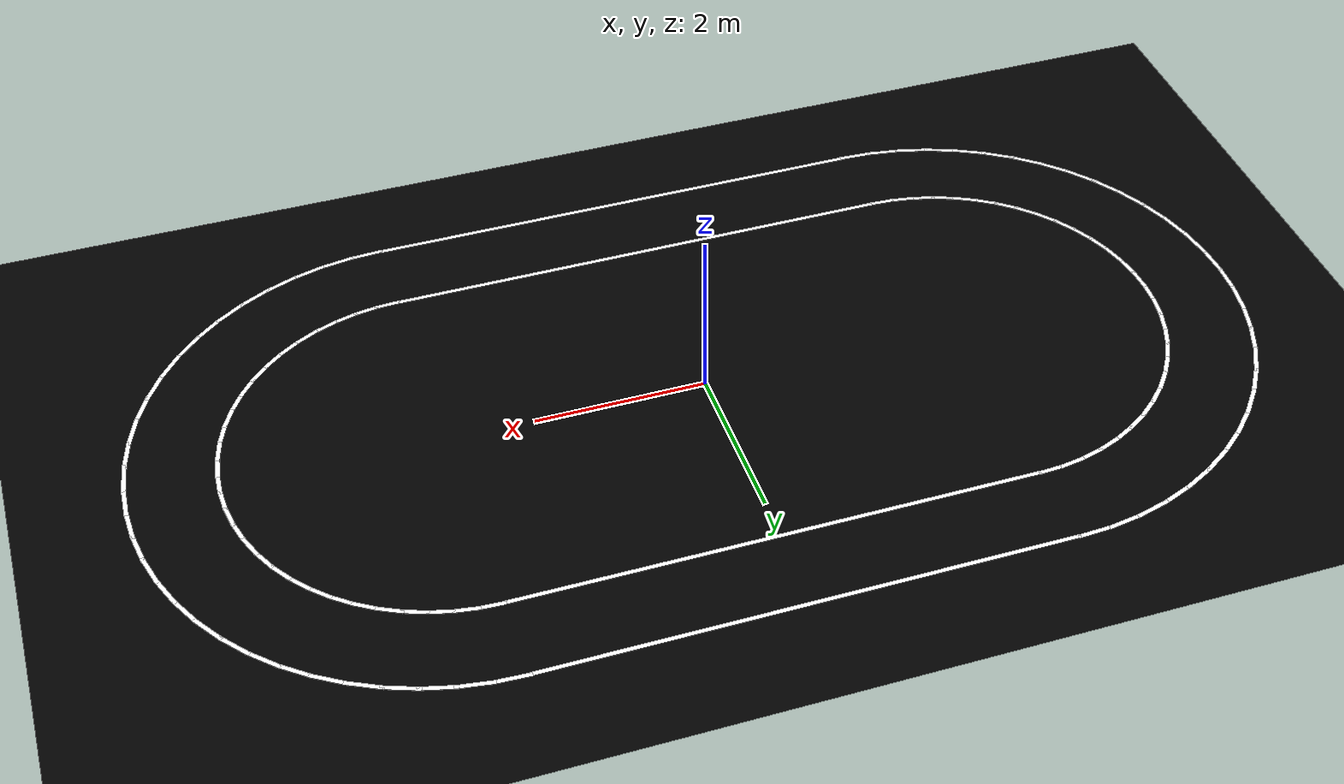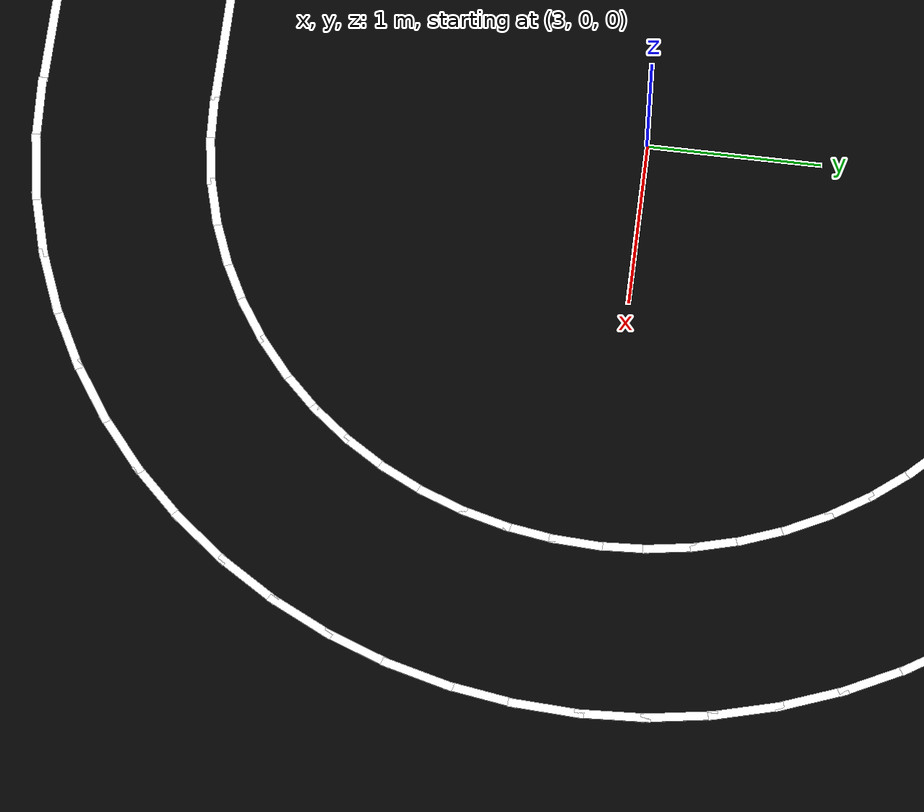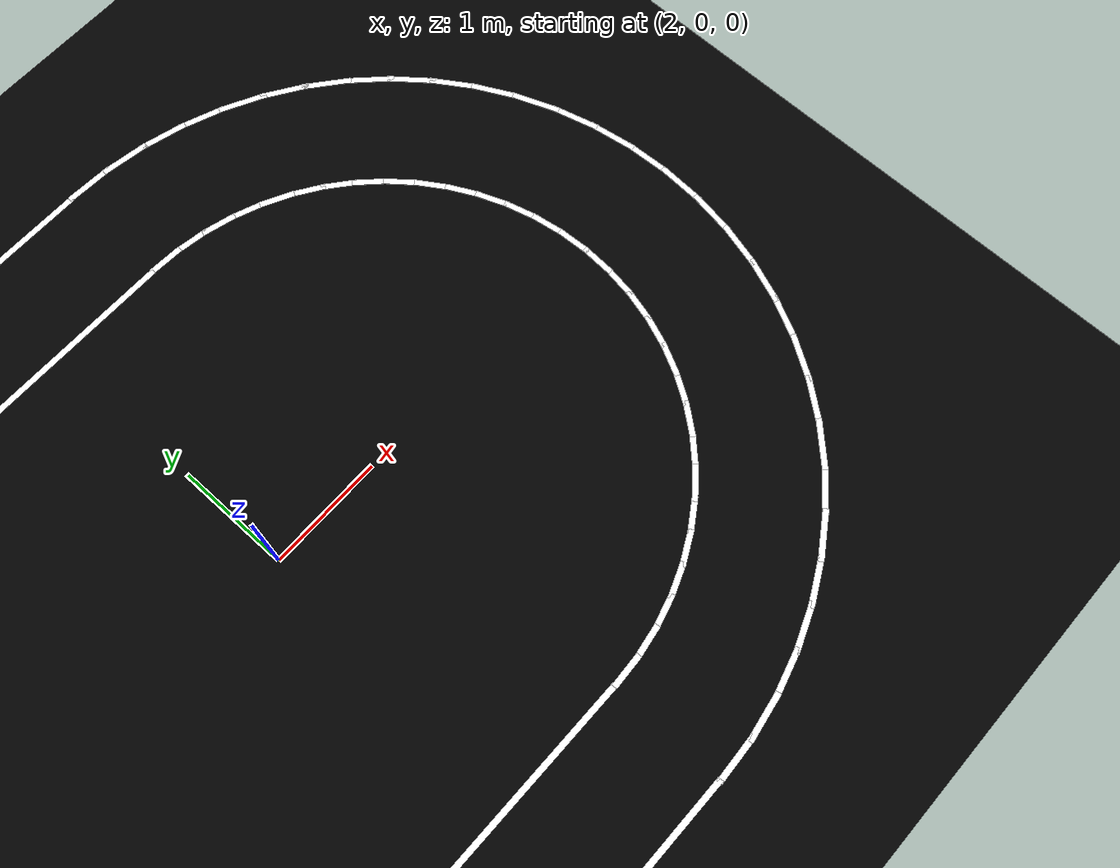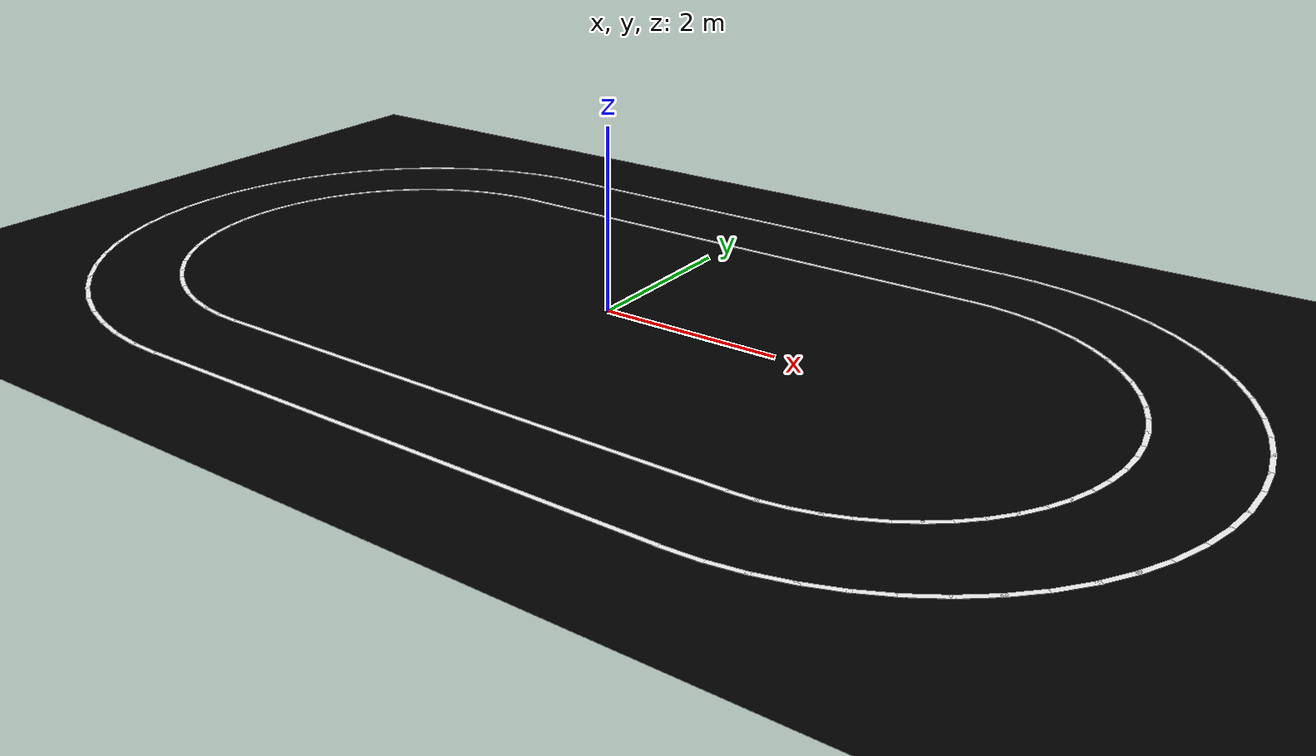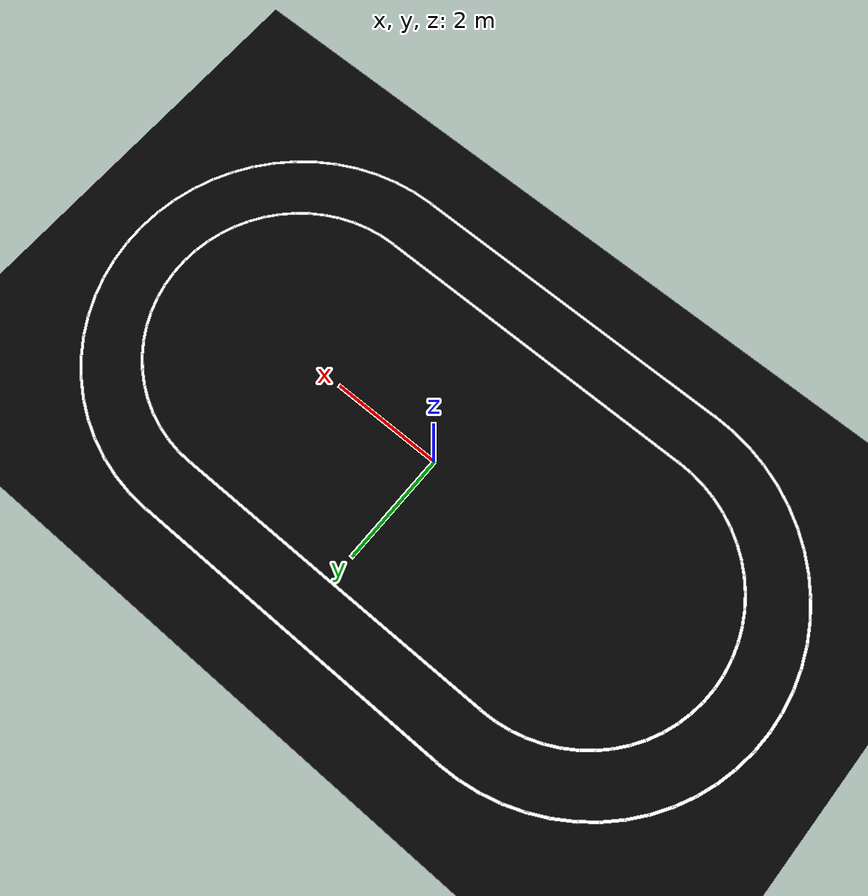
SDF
<?xml version="1.0" ?>
<sdf version="1.9">
  <world name="circuito_ovalo">

    <physics name="1ms" type="ignored">
      <max_step_size>0.001</max_step_size>
      <real_time_factor>1.0</real_time_factor>
    </physics>

    <plugin filename="gz-sim-physics-system" name="gz::sim::systems::Physics"></plugin>
    <plugin filename="gz-sim-user-commands-system" name="gz::sim::systems::UserCommands"></plugin>
    <plugin filename="gz-sim-scene-broadcaster-system" name="gz::sim::systems::SceneBroadcaster"></plugin>
    <plugin filename="gz-sim-sensors-system" name="gz::sim::systems::Sensors">
      <render_engine>ogre2</render_engine>
    </plugin>

    <light type="directional" name="sun">
      <cast_shadows>true</cast_shadows>
      <pose>0 0 10 0 0 0</pose>
      <diffuse>0.8 0.8 0.8 1</diffuse>
      <specular>0.2 0.2 0.2 1</specular>
      <attenuation>
        <range>1000</range>
        <constant>0.9</constant>
        <linear>0.01</linear>
        <quadratic>0.001</quadratic>
      </attenuation>
      <direction>-0.4 0.2 -0.9</direction>
    </light>

    <!-- Piso negro, sin textura -->
    <model name="piso">
      <static>true</static>
      <link name="link">
        <collision name="collision">
          <geometry>
            <plane>
              <normal>0 0 1</normal>
              <size>20.0 20.0</size>
            </plane>
          </geometry>
          <surface>
            <friction>
              <ode>
                <mu>0.9</mu>
                <mu2>0.9</mu2>
              </ode>
            </friction>
          </surface>
        </collision>
        <visual name="visual">
          <geometry>
            <plane>
              <normal>0 0 1</normal>
              <size>20.0 20.0</size>
            </plane>
          </geometry>
          <material>
            <ambient>0 0 0 1</ambient>
            <diffuse>0 0 0 1</diffuse>
            <specular>0 0 0 1</specular>
            <emissive>0 0 0 1</emissive>
          </material>
        </visual>
      </link>
    </model>

    <!-- Líneas blancas del carril (óvalo de un solo carril) -->
    <model name="lineas_carril">
      <static>true</static>
      <link name="recta_sup_int">
        <pose>0.0000 2.5000 0.0010 0 0 0.000000</pose>
        <visual name="visual">
          <geometry>
            <box>
              <size>6.0000 0.0500 0.0020</size>
            </box>
          </geometry>
          <material>
            <ambient>1 1 1 1</ambient>
            <diffuse>1 1 1 1</diffuse>
            <specular>0.2 0.2 0.2 1</specular>
            <emissive>0 0 0 1</emissive>
          </material>
        </visual>
      </link>
      <link name="recta_sup_ext">
        <pose>0.0000 3.5000 0.0010 0 0 0.000000</pose>
        <visual name="visual">
          <geometry>
            <box>
              <size>6.0000 0.0500 0.0020</size>
            </box>
          </geometry>
          <material>
            <ambient>1 1 1 1</ambient>
            <diffuse>1 1 1 1</diffuse>
            <specular>0.2 0.2 0.2 1</specular>
            <emissive>0 0 0 1</emissive>
          </material>
        </visual>
      </link>
      <link name="recta_inf_int">
        <pose>0.0000 -2.5000 0.0010 0 0 0.000000</pose>
        <visual name="visual">
          <geometry>
            <box>
              <size>6.0000 0.0500 0.0020</size>
            </box>
          </geometry>
          <material>
            <ambient>1 1 1 1</ambient>
            <diffuse>1 1 1 1</diffuse>
            <specular>0.2 0.2 0.2 1</specular>
            <emissive>0 0 0 1</emissive>
          </material>
        </visual>
      </link>
      <link name="recta_inf_ext">
        <pose>0.0000 -3.5000 0.0010 0 0 0.000000</pose>
        <visual name="visual">
          <geometry>
            <box>
              <size>6.0000 0.0500 0.0020</size>
            </box>
          </geometry>
          <material>
            <ambient>1 1 1 1</ambient>
            <diffuse>1 1 1 1</diffuse>
            <specular>0.2 0.2 0.2 1</specular>
            <emissive>0 0 0 1</emissive>
          </material>
        </visual>
      </link>
      <link name="curva_der_int_0">
        <pose>3.1308 -2.4966 0.0010 0 0 0.052360</pose>
        <visual name="visual">
          <geometry>
            <box>
              <size>0.3009 0.0500 0.0020</size>
            </box>
          </geometry>
          <material>
            <ambient>1 1 1 1</ambient>
            <diffuse>1 1 1 1</diffuse>
            <specular>0.2 0.2 0.2 1</specular>
            <emissive>0 0 0 1</emissive>
          </material>
        </visual>
      </link>
      <link name="curva_der_int_1">
        <pose>3.3911 -2.4692 0.0010 0 0 0.157080</pose>
        <visual name="visual">
          <geometry>
            <box>
              <size>0.3009 0.0500 0.0020</size>
            </box>
          </geometry>
          <material>
            <ambient>1 1 1 1</ambient>
            <diffuse>1 1 1 1</diffuse>
            <specular>0.2 0.2 0.2 1</specular>
            <emissive>0 0 0 1</emissive>
          </material>
        </visual>
      </link>
      <link name="curva_der_int_2">
        <pose>3.6470 -2.4148 0.0010 0 0 0.261799</pose>
        <visual name="visual">
          <geometry>
            <box>
              <size>0.3009 0.0500 0.0020</size>
            </box>
          </geometry>
          <material>
            <ambient>1 1 1 1</ambient>
            <diffuse>1 1 1 1</diffuse>
            <specular>0.2 0.2 0.2 1</specular>
            <emissive>0 0 0 1</emissive>
          </material>
        </visual>
      </link>
      <link name="curva_der_int_3">
        <pose>3.8959 -2.3340 0.0010 0 0 0.366519</pose>
        <visual name="visual">
          <geometry>
            <box>
              <size>0.3009 0.0500 0.0020</size>
            </box>
          </geometry>
          <material>
            <ambient>1 1 1 1</ambient>
            <diffuse>1 1 1 1</diffuse>
            <specular>0.2 0.2 0.2 1</specular>
            <emissive>0 0 0 1</emissive>
          </material>
        </visual>
      </link>
      <link name="curva_der_int_4">
        <pose>4.1350 -2.2275 0.0010 0 0 0.471239</pose>
        <visual name="visual">
          <geometry>
            <box>
              <size>0.3009 0.0500 0.0020</size>
            </box>
          </geometry>
          <material>
            <ambient>1 1 1 1</ambient>
            <diffuse>1 1 1 1</diffuse>
            <specular>0.2 0.2 0.2 1</specular>
            <emissive>0 0 0 1</emissive>
          </material>
        </visual>
      </link>
      <link name="curva_der_int_5">
        <pose>4.3616 -2.0967 0.0010 0 0 0.575959</pose>
        <visual name="visual">
          <geometry>
            <box>
              <size>0.3009 0.0500 0.0020</size>
            </box>
          </geometry>
          <material>
            <ambient>1 1 1 1</ambient>
            <diffuse>1 1 1 1</diffuse>
            <specular>0.2 0.2 0.2 1</specular>
            <emissive>0 0 0 1</emissive>
          </material>
        </visual>
      </link>
      <link name="curva_der_int_6">
        <pose>4.5733 -1.9429 0.0010 0 0 0.680678</pose>
        <visual name="visual">
          <geometry>
            <box>
              <size>0.3009 0.0500 0.0020</size>
            </box>
          </geometry>
          <material>
            <ambient>1 1 1 1</ambient>
            <diffuse>1 1 1 1</diffuse>
            <specular>0.2 0.2 0.2 1</specular>
            <emissive>0 0 0 1</emissive>
          </material>
        </visual>
      </link>
      <link name="curva_der_int_7">
        <pose>4.7678 -1.7678 0.0010 0 0 0.785398</pose>
        <visual name="visual">
          <geometry>
            <box>
              <size>0.3009 0.0500 0.0020</size>
            </box>
          </geometry>
          <material>
            <ambient>1 1 1 1</ambient>
            <diffuse>1 1 1 1</diffuse>
            <specular>0.2 0.2 0.2 1</specular>
            <emissive>0 0 0 1</emissive>
          </material>
        </visual>
      </link>
      <link name="curva_der_int_8">
        <pose>4.9429 -1.5733 0.0010 0 0 0.890118</pose>
        <visual name="visual">
          <geometry>
            <box>
              <size>0.3009 0.0500 0.0020</size>
            </box>
          </geometry>
          <material>
            <ambient>1 1 1 1</ambient>
            <diffuse>1 1 1 1</diffuse>
            <specular>0.2 0.2 0.2 1</specular>
            <emissive>0 0 0 1</emissive>
          </material>
        </visual>
      </link>
      <link name="curva_der_int_9">
        <pose>5.0967 -1.3616 0.0010 0 0 0.994838</pose>
        <visual name="visual">
          <geometry>
            <box>
              <size>0.3009 0.0500 0.0020</size>
            </box>
          </geometry>
          <material>
            <ambient>1 1 1 1</ambient>
            <diffuse>1 1 1 1</diffuse>
            <specular>0.2 0.2 0.2 1</specular>
            <emissive>0 0 0 1</emissive>
          </material>
        </visual>
      </link>
      <link name="curva_der_int_10">
        <pose>5.2275 -1.1350 0.0010 0 0 1.099557</pose>
        <visual name="visual">
          <geometry>
            <box>
              <size>0.3009 0.0500 0.0020</size>
            </box>
          </geometry>
          <material>
            <ambient>1 1 1 1</ambient>
            <diffuse>1 1 1 1</diffuse>
            <specular>0.2 0.2 0.2 1</specular>
            <emissive>0 0 0 1</emissive>
          </material>
        </visual>
      </link>
      <link name="curva_der_int_11">
        <pose>5.3340 -0.8959 0.0010 0 0 1.204277</pose>
        <visual name="visual">
          <geometry>
            <box>
              <size>0.3009 0.0500 0.0020</size>
            </box>
          </geometry>
          <material>
            <ambient>1 1 1 1</ambient>
            <diffuse>1 1 1 1</diffuse>
            <specular>0.2 0.2 0.2 1</specular>
            <emissive>0 0 0 1</emissive>
          </material>
        </visual>
      </link>
      <link name="curva_der_int_12">
        <pose>5.4148 -0.6470 0.0010 0 0 1.308997</pose>
        <visual name="visual">
          <geometry>
            <box>
              <size>0.3009 0.0500 0.0020</size>
            </box>
          </geometry>
          <material>
            <ambient>1 1 1 1</ambient>
            <diffuse>1 1 1 1</diffuse>
            <specular>0.2 0.2 0.2 1</specular>
            <emissive>0 0 0 1</emissive>
          </material>
        </visual>
      </link>
      <link name="curva_der_int_13">
        <pose>5.4692 -0.3911 0.0010 0 0 1.413717</pose>
        <visual name="visual">
          <geometry>
            <box>
              <size>0.3009 0.0500 0.0020</size>
            </box>
          </geometry>
          <material>
            <ambient>1 1 1 1</ambient>
            <diffuse>1 1 1 1</diffuse>
            <specular>0.2 0.2 0.2 1</specular>
            <emissive>0 0 0 1</emissive>
          </material>
        </visual>
      </link>
      <link name="curva_der_int_14">
        <pose>5.4966 -0.1308 0.0010 0 0 1.518436</pose>
        <visual name="visual">
          <geometry>
            <box>
              <size>0.3009 0.0500 0.0020</size>
            </box>
          </geometry>
          <material>
            <ambient>1 1 1 1</ambient>
            <diffuse>1 1 1 1</diffuse>
            <specular>0.2 0.2 0.2 1</specular>
            <emissive>0 0 0 1</emissive>
          </material>
        </visual>
      </link>
      <link name="curva_der_int_15">
        <pose>5.4966 0.1308 0.0010 0 0 1.623156</pose>
        <visual name="visual">
          <geometry>
            <box>
              <size>0.3009 0.0500 0.0020</size>
            </box>
          </geometry>
          <material>
            <ambient>1 1 1 1</ambient>
            <diffuse>1 1 1 1</diffuse>
            <specular>0.2 0.2 0.2 1</specular>
            <emissive>0 0 0 1</emissive>
          </material>
        </visual>
      </link>
      <link name="curva_der_int_16">
        <pose>5.4692 0.3911 0.0010 0 0 1.727876</pose>
        <visual name="visual">
          <geometry>
            <box>
              <size>0.3009 0.0500 0.0020</size>
            </box>
          </geometry>
          <material>
            <ambient>1 1 1 1</ambient>
            <diffuse>1 1 1 1</diffuse>
            <specular>0.2 0.2 0.2 1</specular>
            <emissive>0 0 0 1</emissive>
          </material>
        </visual>
      </link>
      <link name="curva_der_int_17">
        <pose>5.4148 0.6470 0.0010 0 0 1.832596</pose>
        <visual name="visual">
          <geometry>
            <box>
              <size>0.3009 0.0500 0.0020</size>
            </box>
          </geometry>
          <material>
            <ambient>1 1 1 1</ambient>
            <diffuse>1 1 1 1</diffuse>
            <specular>0.2 0.2 0.2 1</specular>
            <emissive>0 0 0 1</emissive>
          </material>
        </visual>
      </link>
      <link name="curva_der_int_18">
        <pose>5.3340 0.8959 0.0010 0 0 1.937315</pose>
        <visual name="visual">
          <geometry>
            <box>
              <size>0.3009 0.0500 0.0020</size>
            </box>
          </geometry>
          <material>
            <ambient>1 1 1 1</ambient>
            <diffuse>1 1 1 1</diffuse>
            <specular>0.2 0.2 0.2 1</specular>
            <emissive>0 0 0 1</emissive>
          </material>
        </visual>
      </link>
      <link name="curva_der_int_19">
        <pose>5.2275 1.1350 0.0010 0 0 2.042035</pose>
        <visual name="visual">
          <geometry>
            <box>
              <size>0.3009 0.0500 0.0020</size>
            </box>
          </geometry>
          <material>
            <ambient>1 1 1 1</ambient>
            <diffuse>1 1 1 1</diffuse>
            <specular>0.2 0.2 0.2 1</specular>
            <emissive>0 0 0 1</emissive>
          </material>
        </visual>
      </link>
      <link name="curva_der_int_20">
        <pose>5.0967 1.3616 0.0010 0 0 2.146755</pose>
        <visual name="visual">
          <geometry>
            <box>
              <size>0.3009 0.0500 0.0020</size>
            </box>
          </geometry>
          <material>
            <ambient>1 1 1 1</ambient>
            <diffuse>1 1 1 1</diffuse>
            <specular>0.2 0.2 0.2 1</specular>
            <emissive>0 0 0 1</emissive>
          </material>
        </visual>
      </link>
      <link name="curva_der_int_21">
        <pose>4.9429 1.5733 0.0010 0 0 2.251475</pose>
        <visual name="visual">
          <geometry>
            <box>
              <size>0.3009 0.0500 0.0020</size>
            </box>
          </geometry>
          <material>
            <ambient>1 1 1 1</ambient>
            <diffuse>1 1 1 1</diffuse>
            <specular>0.2 0.2 0.2 1</specular>
            <emissive>0 0 0 1</emissive>
          </material>
        </visual>
      </link>
      <link name="curva_der_int_22">
        <pose>4.7678 1.7678 0.0010 0 0 2.356194</pose>
        <visual name="visual">
          <geometry>
            <box>
              <size>0.3009 0.0500 0.0020</size>
            </box>
          </geometry>
          <material>
            <ambient>1 1 1 1</ambient>
            <diffuse>1 1 1 1</diffuse>
            <specular>0.2 0.2 0.2 1</specular>
            <emissive>0 0 0 1</emissive>
          </material>
        </visual>
      </link>
      <link name="curva_der_int_23">
        <pose>4.5733 1.9429 0.0010 0 0 2.460914</pose>
        <visual name="visual">
          <geometry>
            <box>
              <size>0.3009 0.0500 0.0020</size>
            </box>
          </geometry>
          <material>
            <ambient>1 1 1 1</ambient>
            <diffuse>1 1 1 1</diffuse>
            <specular>0.2 0.2 0.2 1</specular>
            <emissive>0 0 0 1</emissive>
          </material>
        </visual>
      </link>
      <link name="curva_der_int_24">
        <pose>4.3616 2.0967 0.0010 0 0 2.565634</pose>
        <visual name="visual">
          <geometry>
            <box>
              <size>0.3009 0.0500 0.0020</size>
            </box>
          </geometry>
          <material>
            <ambient>1 1 1 1</ambient>
            <diffuse>1 1 1 1</diffuse>
            <specular>0.2 0.2 0.2 1</specular>
            <emissive>0 0 0 1</emissive>
          </material>
        </visual>
      </link>
      <link name="curva_der_int_25">
        <pose>4.1350 2.2275 0.0010 0 0 2.670354</pose>
        <visual name="visual">
          <geometry>
            <box>
              <size>0.3009 0.0500 0.0020</size>
            </box>
          </geometry>
          <material>
            <ambient>1 1 1 1</ambient>
            <diffuse>1 1 1 1</diffuse>
            <specular>0.2 0.2 0.2 1</specular>
            <emissive>0 0 0 1</emissive>
          </material>
        </visual>
      </link>
      <link name="curva_der_int_26">
        <pose>3.8959 2.3340 0.0010 0 0 2.775074</pose>
        <visual name="visual">
          <geometry>
            <box>
              <size>0.3009 0.0500 0.0020</size>
            </box>
          </geometry>
          <material>
            <ambient>1 1 1 1</ambient>
            <diffuse>1 1 1 1</diffuse>
            <specular>0.2 0.2 0.2 1</specular>
            <emissive>0 0 0 1</emissive>
          </material>
        </visual>
      </link>
      <link name="curva_der_int_27">
        <pose>3.6470 2.4148 0.0010 0 0 2.879793</pose>
        <visual name="visual">
          <geometry>
            <box>
              <size>0.3009 0.0500 0.0020</size>
            </box>
          </geometry>
          <material>
            <ambient>1 1 1 1</ambient>
            <diffuse>1 1 1 1</diffuse>
            <specular>0.2 0.2 0.2 1</specular>
            <emissive>0 0 0 1</emissive>
          </material>
        </visual>
      </link>
      <link name="curva_der_int_28">
        <pose>3.3911 2.4692 0.0010 0 0 2.984513</pose>
        <visual name="visual">
          <geometry>
            <box>
              <size>0.3009 0.0500 0.0020</size>
            </box>
          </geometry>
          <material>
            <ambient>1 1 1 1</ambient>
            <diffuse>1 1 1 1</diffuse>
            <specular>0.2 0.2 0.2 1</specular>
            <emissive>0 0 0 1</emissive>
          </material>
        </visual>
      </link>
      <link name="curva_der_int_29">
        <pose>3.1308 2.4966 0.0010 0 0 3.089233</pose>
        <visual name="visual">
          <geometry>
            <box>
              <size>0.3009 0.0500 0.0020</size>
            </box>
          </geometry>
          <material>
            <ambient>1 1 1 1</ambient>
            <diffuse>1 1 1 1</diffuse>
            <specular>0.2 0.2 0.2 1</specular>
            <emissive>0 0 0 1</emissive>
          </material>
        </visual>
      </link>
      <link name="curva_der_ext_0">
        <pose>3.1832 -3.4952 0.0010 0 0 0.052360</pose>
        <visual name="visual">
          <geometry>
            <box>
              <size>0.4213 0.0500 0.0020</size>
            </box>
          </geometry>
          <material>
            <ambient>1 1 1 1</ambient>
            <diffuse>1 1 1 1</diffuse>
            <specular>0.2 0.2 0.2 1</specular>
            <emissive>0 0 0 1</emissive>
          </material>
        </visual>
      </link>
      <link name="curva_der_ext_1">
        <pose>3.5475 -3.4569 0.0010 0 0 0.157080</pose>
        <visual name="visual">
          <geometry>
            <box>
              <size>0.4213 0.0500 0.0020</size>
            </box>
          </geometry>
          <material>
            <ambient>1 1 1 1</ambient>
            <diffuse>1 1 1 1</diffuse>
            <specular>0.2 0.2 0.2 1</specular>
            <emissive>0 0 0 1</emissive>
          </material>
        </visual>
      </link>
      <link name="curva_der_ext_2">
        <pose>3.9059 -3.3807 0.0010 0 0 0.261799</pose>
        <visual name="visual">
          <geometry>
            <box>
              <size>0.4213 0.0500 0.0020</size>
            </box>
          </geometry>
          <material>
            <ambient>1 1 1 1</ambient>
            <diffuse>1 1 1 1</diffuse>
            <specular>0.2 0.2 0.2 1</specular>
            <emissive>0 0 0 1</emissive>
          </material>
        </visual>
      </link>
      <link name="curva_der_ext_3">
        <pose>4.2543 -3.2675 0.0010 0 0 0.366519</pose>
        <visual name="visual">
          <geometry>
            <box>
              <size>0.4213 0.0500 0.0020</size>
            </box>
          </geometry>
          <material>
            <ambient>1 1 1 1</ambient>
            <diffuse>1 1 1 1</diffuse>
            <specular>0.2 0.2 0.2 1</specular>
            <emissive>0 0 0 1</emissive>
          </material>
        </visual>
      </link>
      <link name="curva_der_ext_4">
        <pose>4.5890 -3.1185 0.0010 0 0 0.471239</pose>
        <visual name="visual">
          <geometry>
            <box>
              <size>0.4213 0.0500 0.0020</size>
            </box>
          </geometry>
          <material>
            <ambient>1 1 1 1</ambient>
            <diffuse>1 1 1 1</diffuse>
            <specular>0.2 0.2 0.2 1</specular>
            <emissive>0 0 0 1</emissive>
          </material>
        </visual>
      </link>
      <link name="curva_der_ext_5">
        <pose>4.9062 -2.9353 0.0010 0 0 0.575959</pose>
        <visual name="visual">
          <geometry>
            <box>
              <size>0.4213 0.0500 0.0020</size>
            </box>
          </geometry>
          <material>
            <ambient>1 1 1 1</ambient>
            <diffuse>1 1 1 1</diffuse>
            <specular>0.2 0.2 0.2 1</specular>
            <emissive>0 0 0 1</emissive>
          </material>
        </visual>
      </link>
      <link name="curva_der_ext_6">
        <pose>5.2026 -2.7200 0.0010 0 0 0.680678</pose>
        <visual name="visual">
          <geometry>
            <box>
              <size>0.4213 0.0500 0.0020</size>
            </box>
          </geometry>
          <material>
            <ambient>1 1 1 1</ambient>
            <diffuse>1 1 1 1</diffuse>
            <specular>0.2 0.2 0.2 1</specular>
            <emissive>0 0 0 1</emissive>
          </material>
        </visual>
      </link>
      <link name="curva_der_ext_7">
        <pose>5.4749 -2.4749 0.0010 0 0 0.785398</pose>
        <visual name="visual">
          <geometry>
            <box>
              <size>0.4213 0.0500 0.0020</size>
            </box>
          </geometry>
          <material>
            <ambient>1 1 1 1</ambient>
            <diffuse>1 1 1 1</diffuse>
            <specular>0.2 0.2 0.2 1</specular>
            <emissive>0 0 0 1</emissive>
          </material>
        </visual>
      </link>
      <link name="curva_der_ext_8">
        <pose>5.7200 -2.2026 0.0010 0 0 0.890118</pose>
        <visual name="visual">
          <geometry>
            <box>
              <size>0.4213 0.0500 0.0020</size>
            </box>
          </geometry>
          <material>
            <ambient>1 1 1 1</ambient>
            <diffuse>1 1 1 1</diffuse>
            <specular>0.2 0.2 0.2 1</specular>
            <emissive>0 0 0 1</emissive>
          </material>
        </visual>
      </link>
      <link name="curva_der_ext_9">
        <pose>5.9353 -1.9062 0.0010 0 0 0.994838</pose>
        <visual name="visual">
          <geometry>
            <box>
              <size>0.4213 0.0500 0.0020</size>
            </box>
          </geometry>
          <material>
            <ambient>1 1 1 1</ambient>
            <diffuse>1 1 1 1</diffuse>
            <specular>0.2 0.2 0.2 1</specular>
            <emissive>0 0 0 1</emissive>
          </material>
        </visual>
      </link>
      <link name="curva_der_ext_10">
        <pose>6.1185 -1.5890 0.0010 0 0 1.099557</pose>
        <visual name="visual">
          <geometry>
            <box>
              <size>0.4213 0.0500 0.0020</size>
            </box>
          </geometry>
          <material>
            <ambient>1 1 1 1</ambient>
            <diffuse>1 1 1 1</diffuse>
            <specular>0.2 0.2 0.2 1</specular>
            <emissive>0 0 0 1</emissive>
          </material>
        </visual>
      </link>
      <link name="curva_der_ext_11">
        <pose>6.2675 -1.2543 0.0010 0 0 1.204277</pose>
        <visual name="visual">
          <geometry>
            <box>
              <size>0.4213 0.0500 0.0020</size>
            </box>
          </geometry>
          <material>
            <ambient>1 1 1 1</ambient>
            <diffuse>1 1 1 1</diffuse>
            <specular>0.2 0.2 0.2 1</specular>
            <emissive>0 0 0 1</emissive>
          </material>
        </visual>
      </link>
      <link name="curva_der_ext_12">
        <pose>6.3807 -0.9059 0.0010 0 0 1.308997</pose>
        <visual name="visual">
          <geometry>
            <box>
              <size>0.4213 0.0500 0.0020</size>
            </box>
          </geometry>
          <material>
            <ambient>1 1 1 1</ambient>
            <diffuse>1 1 1 1</diffuse>
            <specular>0.2 0.2 0.2 1</specular>
            <emissive>0 0 0 1</emissive>
          </material>
        </visual>
      </link>
      <link name="curva_der_ext_13">
        <pose>6.4569 -0.5475 0.0010 0 0 1.413717</pose>
        <visual name="visual">
          <geometry>
            <box>
              <size>0.4213 0.0500 0.0020</size>
            </box>
          </geometry>
          <material>
            <ambient>1 1 1 1</ambient>
            <diffuse>1 1 1 1</diffuse>
            <specular>0.2 0.2 0.2 1</specular>
            <emissive>0 0 0 1</emissive>
          </material>
        </visual>
      </link>
      <link name="curva_der_ext_14">
        <pose>6.4952 -0.1832 0.0010 0 0 1.518436</pose>
        <visual name="visual">
          <geometry>
            <box>
              <size>0.4213 0.0500 0.0020</size>
            </box>
          </geometry>
          <material>
            <ambient>1 1 1 1</ambient>
            <diffuse>1 1 1 1</diffuse>
            <specular>0.2 0.2 0.2 1</specular>
            <emissive>0 0 0 1</emissive>
          </material>
        </visual>
      </link>
      <link name="curva_der_ext_15">
        <pose>6.4952 0.1832 0.0010 0 0 1.623156</pose>
        <visual name="visual">
          <geometry>
            <box>
              <size>0.4213 0.0500 0.0020</size>
            </box>
          </geometry>
          <material>
            <ambient>1 1 1 1</ambient>
            <diffuse>1 1 1 1</diffuse>
            <specular>0.2 0.2 0.2 1</specular>
            <emissive>0 0 0 1</emissive>
          </material>
        </visual>
      </link>
      <link name="curva_der_ext_16">
        <pose>6.4569 0.5475 0.0010 0 0 1.727876</pose>
        <visual name="visual">
          <geometry>
            <box>
              <size>0.4213 0.0500 0.0020</size>
            </box>
          </geometry>
          <material>
            <ambient>1 1 1 1</ambient>
            <diffuse>1 1 1 1</diffuse>
            <specular>0.2 0.2 0.2 1</specular>
            <emissive>0 0 0 1</emissive>
          </material>
        </visual>
      </link>
      <link name="curva_der_ext_17">
        <pose>6.3807 0.9059 0.0010 0 0 1.832596</pose>
        <visual name="visual">
          <geometry>
            <box>
              <size>0.4213 0.0500 0.0020</size>
            </box>
          </geometry>
          <material>
            <ambient>1 1 1 1</ambient>
            <diffuse>1 1 1 1</diffuse>
            <specular>0.2 0.2 0.2 1</specular>
            <emissive>0 0 0 1</emissive>
          </material>
        </visual>
      </link>
      <link name="curva_der_ext_18">
        <pose>6.2675 1.2543 0.0010 0 0 1.937315</pose>
        <visual name="visual">
          <geometry>
            <box>
              <size>0.4213 0.0500 0.0020</size>
            </box>
          </geometry>
          <material>
            <ambient>1 1 1 1</ambient>
            <diffuse>1 1 1 1</diffuse>
            <specular>0.2 0.2 0.2 1</specular>
            <emissive>0 0 0 1</emissive>
          </material>
        </visual>
      </link>
      <link name="curva_der_ext_19">
        <pose>6.1185 1.5890 0.0010 0 0 2.042035</pose>
        <visual name="visual">
          <geometry>
            <box>
              <size>0.4213 0.0500 0.0020</size>
            </box>
          </geometry>
          <material>
            <ambient>1 1 1 1</ambient>
            <diffuse>1 1 1 1</diffuse>
            <specular>0.2 0.2 0.2 1</specular>
            <emissive>0 0 0 1</emissive>
          </material>
        </visual>
      </link>
      <link name="curva_der_ext_20">
        <pose>5.9353 1.9062 0.0010 0 0 2.146755</pose>
        <visual name="visual">
          <geometry>
            <box>
              <size>0.4213 0.0500 0.0020</size>
            </box>
          </geometry>
          <material>
            <ambient>1 1 1 1</ambient>
            <diffuse>1 1 1 1</diffuse>
            <specular>0.2 0.2 0.2 1</specular>
            <emissive>0 0 0 1</emissive>
          </material>
        </visual>
      </link>
      <link name="curva_der_ext_21">
        <pose>5.7200 2.2026 0.0010 0 0 2.251475</pose>
        <visual name="visual">
          <geometry>
            <box>
              <size>0.4213 0.0500 0.0020</size>
            </box>
          </geometry>
          <material>
            <ambient>1 1 1 1</ambient>
            <diffuse>1 1 1 1</diffuse>
            <specular>0.2 0.2 0.2 1</specular>
            <emissive>0 0 0 1</emissive>
          </material>
        </visual>
      </link>
      <link name="curva_der_ext_22">
        <pose>5.4749 2.4749 0.0010 0 0 2.356194</pose>
        <visual name="visual">
          <geometry>
            <box>
              <size>0.4213 0.0500 0.0020</size>
            </box>
          </geometry>
          <material>
            <ambient>1 1 1 1</ambient>
            <diffuse>1 1 1 1</diffuse>
            <specular>0.2 0.2 0.2 1</specular>
            <emissive>0 0 0 1</emissive>
          </material>
        </visual>
      </link>
      <link name="curva_der_ext_23">
        <pose>5.2026 2.7200 0.0010 0 0 2.460914</pose>
        <visual name="visual">
          <geometry>
            <box>
              <size>0.4213 0.0500 0.0020</size>
            </box>
          </geometry>
          <material>
            <ambient>1 1 1 1</ambient>
            <diffuse>1 1 1 1</diffuse>
            <specular>0.2 0.2 0.2 1</specular>
            <emissive>0 0 0 1</emissive>
          </material>
        </visual>
      </link>
      <link name="curva_der_ext_24">
        <pose>4.9062 2.9353 0.0010 0 0 2.565634</pose>
        <visual name="visual">
          <geometry>
            <box>
              <size>0.4213 0.0500 0.0020</size>
            </box>
          </geometry>
          <material>
            <ambient>1 1 1 1</ambient>
            <diffuse>1 1 1 1</diffuse>
            <specular>0.2 0.2 0.2 1</specular>
            <emissive>0 0 0 1</emissive>
          </material>
        </visual>
      </link>
      <link name="curva_der_ext_25">
        <pose>4.5890 3.1185 0.0010 0 0 2.670354</pose>
        <visual name="visual">
          <geometry>
            <box>
              <size>0.4213 0.0500 0.0020</size>
            </box>
          </geometry>
          <material>
            <ambient>1 1 1 1</ambient>
            <diffuse>1 1 1 1</diffuse>
            <specular>0.2 0.2 0.2 1</specular>
            <emissive>0 0 0 1</emissive>
          </material>
        </visual>
      </link>
      <link name="curva_der_ext_26">
        <pose>4.2543 3.2675 0.0010 0 0 2.775074</pose>
        <visual name="visual">
          <geometry>
            <box>
              <size>0.4213 0.0500 0.0020</size>
            </box>
          </geometry>
          <material>
            <ambient>1 1 1 1</ambient>
            <diffuse>1 1 1 1</diffuse>
            <specular>0.2 0.2 0.2 1</specular>
            <emissive>0 0 0 1</emissive>
          </material>
        </visual>
      </link>
      <link name="curva_der_ext_27">
        <pose>3.9059 3.3807 0.0010 0 0 2.879793</pose>
        <visual name="visual">
          <geometry>
            <box>
              <size>0.4213 0.0500 0.0020</size>
            </box>
          </geometry>
          <material>
            <ambient>1 1 1 1</ambient>
            <diffuse>1 1 1 1</diffuse>
            <specular>0.2 0.2 0.2 1</specular>
            <emissive>0 0 0 1</emissive>
          </material>
        </visual>
      </link>
      <link name="curva_der_ext_28">
        <pose>3.5475 3.4569 0.0010 0 0 2.984513</pose>
        <visual name="visual">
          <geometry>
            <box>
              <size>0.4213 0.0500 0.0020</size>
            </box>
          </geometry>
          <material>
            <ambient>1 1 1 1</ambient>
            <diffuse>1 1 1 1</diffuse>
            <specular>0.2 0.2 0.2 1</specular>
            <emissive>0 0 0 1</emissive>
          </material>
        </visual>
      </link>
      <link name="curva_der_ext_29">
        <pose>3.1832 3.4952 0.0010 0 0 3.089233</pose>
        <visual name="visual">
          <geometry>
            <box>
              <size>0.4213 0.0500 0.0020</size>
            </box>
          </geometry>
          <material>
            <ambient>1 1 1 1</ambient>
            <diffuse>1 1 1 1</diffuse>
            <specular>0.2 0.2 0.2 1</specular>
            <emissive>0 0 0 1</emissive>
          </material>
        </visual>
      </link>
      <link name="curva_izq_int_0">
        <pose>-3.1308 2.4966 0.0010 0 0 3.193953</pose>
        <visual name="visual">
          <geometry>
            <box>
              <size>0.3009 0.0500 0.0020</size>
            </box>
          </geometry>
          <material>
            <ambient>1 1 1 1</ambient>
            <diffuse>1 1 1 1</diffuse>
            <specular>0.2 0.2 0.2 1</specular>
            <emissive>0 0 0 1</emissive>
          </material>
        </visual>
      </link>
      <link name="curva_izq_int_1">
        <pose>-3.3911 2.4692 0.0010 0 0 3.298672</pose>
        <visual name="visual">
          <geometry>
            <box>
              <size>0.3009 0.0500 0.0020</size>
            </box>
          </geometry>
          <material>
            <ambient>1 1 1 1</ambient>
            <diffuse>1 1 1 1</diffuse>
            <specular>0.2 0.2 0.2 1</specular>
            <emissive>0 0 0 1</emissive>
          </material>
        </visual>
      </link>
      <link name="curva_izq_int_2">
        <pose>-3.6470 2.4148 0.0010 0 0 3.403392</pose>
        <visual name="visual">
          <geometry>
            <box>
              <size>0.3009 0.0500 0.0020</size>
            </box>
          </geometry>
          <material>
            <ambient>1 1 1 1</ambient>
            <diffuse>1 1 1 1</diffuse>
            <specular>0.2 0.2 0.2 1</specular>
            <emissive>0 0 0 1</emissive>
          </material>
        </visual>
      </link>
      <link name="curva_izq_int_3">
        <pose>-3.8959 2.3340 0.0010 0 0 3.508112</pose>
        <visual name="visual">
          <geometry>
            <box>
              <size>0.3009 0.0500 0.0020</size>
            </box>
          </geometry>
          <material>
            <ambient>1 1 1 1</ambient>
            <diffuse>1 1 1 1</diffuse>
            <specular>0.2 0.2 0.2 1</specular>
            <emissive>0 0 0 1</emissive>
          </material>
        </visual>
      </link>
      <link name="curva_izq_int_4">
        <pose>-4.1350 2.2275 0.0010 0 0 3.612832</pose>
        <visual name="visual">
          <geometry>
            <box>
              <size>0.3009 0.0500 0.0020</size>
            </box>
          </geometry>
          <material>
            <ambient>1 1 1 1</ambient>
            <diffuse>1 1 1 1</diffuse>
            <specular>0.2 0.2 0.2 1</specular>
            <emissive>0 0 0 1</emissive>
          </material>
        </visual>
      </link>
      <link name="curva_izq_int_5">
        <pose>-4.3616 2.0967 0.0010 0 0 3.717551</pose>
        <visual name="visual">
          <geometry>
            <box>
              <size>0.3009 0.0500 0.0020</size>
            </box>
          </geometry>
          <material>
            <ambient>1 1 1 1</ambient>
            <diffuse>1 1 1 1</diffuse>
            <specular>0.2 0.2 0.2 1</specular>
            <emissive>0 0 0 1</emissive>
          </material>
        </visual>
      </link>
      <link name="curva_izq_int_6">
        <pose>-4.5733 1.9429 0.0010 0 0 3.822271</pose>
        <visual name="visual">
          <geometry>
            <box>
              <size>0.3009 0.0500 0.0020</size>
            </box>
          </geometry>
          <material>
            <ambient>1 1 1 1</ambient>
            <diffuse>1 1 1 1</diffuse>
            <specular>0.2 0.2 0.2 1</specular>
            <emissive>0 0 0 1</emissive>
          </material>
        </visual>
      </link>
      <link name="curva_izq_int_7">
        <pose>-4.7678 1.7678 0.0010 0 0 3.926991</pose>
        <visual name="visual">
          <geometry>
            <box>
              <size>0.3009 0.0500 0.0020</size>
            </box>
          </geometry>
          <material>
            <ambient>1 1 1 1</ambient>
            <diffuse>1 1 1 1</diffuse>
            <specular>0.2 0.2 0.2 1</specular>
            <emissive>0 0 0 1</emissive>
          </material>
        </visual>
      </link>
      <link name="curva_izq_int_8">
        <pose>-4.9429 1.5733 0.0010 0 0 4.031711</pose>
        <visual name="visual">
          <geometry>
            <box>
              <size>0.3009 0.0500 0.0020</size>
            </box>
          </geometry>
          <material>
            <ambient>1 1 1 1</ambient>
            <diffuse>1 1 1 1</diffuse>
            <specular>0.2 0.2 0.2 1</specular>
            <emissive>0 0 0 1</emissive>
          </material>
        </visual>
      </link>
      <link name="curva_izq_int_9">
        <pose>-5.0967 1.3616 0.0010 0 0 4.136430</pose>
        <visual name="visual">
          <geometry>
            <box>
              <size>0.3009 0.0500 0.0020</size>
            </box>
          </geometry>
          <material>
            <ambient>1 1 1 1</ambient>
            <diffuse>1 1 1 1</diffuse>
            <specular>0.2 0.2 0.2 1</specular>
            <emissive>0 0 0 1</emissive>
          </material>
        </visual>
      </link>
      <link name="curva_izq_int_10">
        <pose>-5.2275 1.1350 0.0010 0 0 4.241150</pose>
        <visual name="visual">
          <geometry>
            <box>
              <size>0.3009 0.0500 0.0020</size>
            </box>
          </geometry>
          <material>
            <ambient>1 1 1 1</ambient>
            <diffuse>1 1 1 1</diffuse>
            <specular>0.2 0.2 0.2 1</specular>
            <emissive>0 0 0 1</emissive>
          </material>
        </visual>
      </link>
      <link name="curva_izq_int_11">
        <pose>-5.3340 0.8959 0.0010 0 0 4.345870</pose>
        <visual name="visual">
          <geometry>
            <box>
              <size>0.3009 0.0500 0.0020</size>
            </box>
          </geometry>
          <material>
            <ambient>1 1 1 1</ambient>
            <diffuse>1 1 1 1</diffuse>
            <specular>0.2 0.2 0.2 1</specular>
            <emissive>0 0 0 1</emissive>
          </material>
        </visual>
      </link>
      <link name="curva_izq_int_12">
        <pose>-5.4148 0.6470 0.0010 0 0 4.450590</pose>
        <visual name="visual">
          <geometry>
            <box>
              <size>0.3009 0.0500 0.0020</size>
            </box>
          </geometry>
          <material>
            <ambient>1 1 1 1</ambient>
            <diffuse>1 1 1 1</diffuse>
            <specular>0.2 0.2 0.2 1</specular>
            <emissive>0 0 0 1</emissive>
          </material>
        </visual>
      </link>
      <link name="curva_izq_int_13">
        <pose>-5.4692 0.3911 0.0010 0 0 4.555309</pose>
        <visual name="visual">
          <geometry>
            <box>
              <size>0.3009 0.0500 0.0020</size>
            </box>
          </geometry>
          <material>
            <ambient>1 1 1 1</ambient>
            <diffuse>1 1 1 1</diffuse>
            <specular>0.2 0.2 0.2 1</specular>
            <emissive>0 0 0 1</emissive>
          </material>
        </visual>
      </link>
      <link name="curva_izq_int_14">
        <pose>-5.4966 0.1308 0.0010 0 0 4.660029</pose>
        <visual name="visual">
          <geometry>
            <box>
              <size>0.3009 0.0500 0.0020</size>
            </box>
          </geometry>
          <material>
            <ambient>1 1 1 1</ambient>
            <diffuse>1 1 1 1</diffuse>
            <specular>0.2 0.2 0.2 1</specular>
            <emissive>0 0 0 1</emissive>
          </material>
        </visual>
      </link>
      <link name="curva_izq_int_15">
        <pose>-5.4966 -0.1308 0.0010 0 0 4.764749</pose>
        <visual name="visual">
          <geometry>
            <box>
              <size>0.3009 0.0500 0.0020</size>
            </box>
          </geometry>
          <material>
            <ambient>1 1 1 1</ambient>
            <diffuse>1 1 1 1</diffuse>
            <specular>0.2 0.2 0.2 1</specular>
            <emissive>0 0 0 1</emissive>
          </material>
        </visual>
      </link>
      <link name="curva_izq_int_16">
        <pose>-5.4692 -0.3911 0.0010 0 0 4.869469</pose>
        <visual name="visual">
          <geometry>
            <box>
              <size>0.3009 0.0500 0.0020</size>
            </box>
          </geometry>
          <material>
            <ambient>1 1 1 1</ambient>
            <diffuse>1 1 1 1</diffuse>
            <specular>0.2 0.2 0.2 1</specular>
            <emissive>0 0 0 1</emissive>
          </material>
        </visual>
      </link>
      <link name="curva_izq_int_17">
        <pose>-5.4148 -0.6470 0.0010 0 0 4.974188</pose>
        <visual name="visual">
          <geometry>
            <box>
              <size>0.3009 0.0500 0.0020</size>
            </box>
          </geometry>
          <material>
            <ambient>1 1 1 1</ambient>
            <diffuse>1 1 1 1</diffuse>
            <specular>0.2 0.2 0.2 1</specular>
            <emissive>0 0 0 1</emissive>
          </material>
        </visual>
      </link>
      <link name="curva_izq_int_18">
        <pose>-5.3340 -0.8959 0.0010 0 0 5.078908</pose>
        <visual name="visual">
          <geometry>
            <box>
              <size>0.3009 0.0500 0.0020</size>
            </box>
          </geometry>
          <material>
            <ambient>1 1 1 1</ambient>
            <diffuse>1 1 1 1</diffuse>
            <specular>0.2 0.2 0.2 1</specular>
            <emissive>0 0 0 1</emissive>
          </material>
        </visual>
      </link>
      <link name="curva_izq_int_19">
        <pose>-5.2275 -1.1350 0.0010 0 0 5.183628</pose>
        <visual name="visual">
          <geometry>
            <box>
              <size>0.3009 0.0500 0.0020</size>
            </box>
          </geometry>
          <material>
            <ambient>1 1 1 1</ambient>
            <diffuse>1 1 1 1</diffuse>
            <specular>0.2 0.2 0.2 1</specular>
            <emissive>0 0 0 1</emissive>
          </material>
        </visual>
      </link>
      <link name="curva_izq_int_20">
        <pose>-5.0967 -1.3616 0.0010 0 0 5.288348</pose>
        <visual name="visual">
          <geometry>
            <box>
              <size>0.3009 0.0500 0.0020</size>
            </box>
          </geometry>
          <material>
            <ambient>1 1 1 1</ambient>
            <diffuse>1 1 1 1</diffuse>
            <specular>0.2 0.2 0.2 1</specular>
            <emissive>0 0 0 1</emissive>
          </material>
        </visual>
      </link>
      <link name="curva_izq_int_21">
        <pose>-4.9429 -1.5733 0.0010 0 0 5.393067</pose>
        <visual name="visual">
          <geometry>
            <box>
              <size>0.3009 0.0500 0.0020</size>
            </box>
          </geometry>
          <material>
            <ambient>1 1 1 1</ambient>
            <diffuse>1 1 1 1</diffuse>
            <specular>0.2 0.2 0.2 1</specular>
            <emissive>0 0 0 1</emissive>
          </material>
        </visual>
      </link>
      <link name="curva_izq_int_22">
        <pose>-4.7678 -1.7678 0.0010 0 0 5.497787</pose>
        <visual name="visual">
          <geometry>
            <box>
              <size>0.3009 0.0500 0.0020</size>
            </box>
          </geometry>
          <material>
            <ambient>1 1 1 1</ambient>
            <diffuse>1 1 1 1</diffuse>
            <specular>0.2 0.2 0.2 1</specular>
            <emissive>0 0 0 1</emissive>
          </material>
        </visual>
      </link>
      <link name="curva_izq_int_23">
        <pose>-4.5733 -1.9429 0.0010 0 0 5.602507</pose>
        <visual name="visual">
          <geometry>
            <box>
              <size>0.3009 0.0500 0.0020</size>
            </box>
          </geometry>
          <material>
            <ambient>1 1 1 1</ambient>
            <diffuse>1 1 1 1</diffuse>
            <specular>0.2 0.2 0.2 1</specular>
            <emissive>0 0 0 1</emissive>
          </material>
        </visual>
      </link>
      <link name="curva_izq_int_24">
        <pose>-4.3616 -2.0967 0.0010 0 0 5.707227</pose>
        <visual name="visual">
          <geometry>
            <box>
              <size>0.3009 0.0500 0.0020</size>
            </box>
          </geometry>
          <material>
            <ambient>1 1 1 1</ambient>
            <diffuse>1 1 1 1</diffuse>
            <specular>0.2 0.2 0.2 1</specular>
            <emissive>0 0 0 1</emissive>
          </material>
        </visual>
      </link>
      <link name="curva_izq_int_25">
        <pose>-4.1350 -2.2275 0.0010 0 0 5.811946</pose>
        <visual name="visual">
          <geometry>
            <box>
              <size>0.3009 0.0500 0.0020</size>
            </box>
          </geometry>
          <material>
            <ambient>1 1 1 1</ambient>
            <diffuse>1 1 1 1</diffuse>
            <specular>0.2 0.2 0.2 1</specular>
            <emissive>0 0 0 1</emissive>
          </material>
        </visual>
      </link>
      <link name="curva_izq_int_26">
        <pose>-3.8959 -2.3340 0.0010 0 0 5.916666</pose>
        <visual name="visual">
          <geometry>
            <box>
              <size>0.3009 0.0500 0.0020</size>
            </box>
          </geometry>
          <material>
            <ambient>1 1 1 1</ambient>
            <diffuse>1 1 1 1</diffuse>
            <specular>0.2 0.2 0.2 1</specular>
            <emissive>0 0 0 1</emissive>
          </material>
        </visual>
      </link>
      <link name="curva_izq_int_27">
        <pose>-3.6470 -2.4148 0.0010 0 0 6.021386</pose>
        <visual name="visual">
          <geometry>
            <box>
              <size>0.3009 0.0500 0.0020</size>
            </box>
          </geometry>
          <material>
            <ambient>1 1 1 1</ambient>
            <diffuse>1 1 1 1</diffuse>
            <specular>0.2 0.2 0.2 1</specular>
            <emissive>0 0 0 1</emissive>
          </material>
        </visual>
      </link>
      <link name="curva_izq_int_28">
        <pose>-3.3911 -2.4692 0.0010 0 0 6.126106</pose>
        <visual name="visual">
          <geometry>
            <box>
              <size>0.3009 0.0500 0.0020</size>
            </box>
          </geometry>
          <material>
            <ambient>1 1 1 1</ambient>
            <diffuse>1 1 1 1</diffuse>
            <specular>0.2 0.2 0.2 1</specular>
            <emissive>0 0 0 1</emissive>
          </material>
        </visual>
      </link>
      <link name="curva_izq_int_29">
        <pose>-3.1308 -2.4966 0.0010 0 0 6.230825</pose>
        <visual name="visual">
          <geometry>
            <box>
              <size>0.3009 0.0500 0.0020</size>
            </box>
          </geometry>
          <material>
            <ambient>1 1 1 1</ambient>
            <diffuse>1 1 1 1</diffuse>
            <specular>0.2 0.2 0.2 1</specular>
            <emissive>0 0 0 1</emissive>
          </material>
        </visual>
      </link>
      <link name="curva_izq_ext_0">
        <pose>-3.1832 3.4952 0.0010 0 0 3.193953</pose>
        <visual name="visual">
          <geometry>
            <box>
              <size>0.4213 0.0500 0.0020</size>
            </box>
          </geometry>
          <material>
            <ambient>1 1 1 1</ambient>
            <diffuse>1 1 1 1</diffuse>
            <specular>0.2 0.2 0.2 1</specular>
            <emissive>0 0 0 1</emissive>
          </material>
        </visual>
      </link>
      <link name="curva_izq_ext_1">
        <pose>-3.5475 3.4569 0.0010 0 0 3.298672</pose>
        <visual name="visual">
          <geometry>
            <box>
              <size>0.4213 0.0500 0.0020</size>
            </box>
          </geometry>
          <material>
            <ambient>1 1 1 1</ambient>
            <diffuse>1 1 1 1</diffuse>
            <specular>0.2 0.2 0.2 1</specular>
            <emissive>0 0 0 1</emissive>
          </material>
        </visual>
      </link>
      <link name="curva_izq_ext_2">
        <pose>-3.9059 3.3807 0.0010 0 0 3.403392</pose>
        <visual name="visual">
          <geometry>
            <box>
              <size>0.4213 0.0500 0.0020</size>
            </box>
          </geometry>
          <material>
            <ambient>1 1 1 1</ambient>
            <diffuse>1 1 1 1</diffuse>
            <specular>0.2 0.2 0.2 1</specular>
            <emissive>0 0 0 1</emissive>
          </material>
        </visual>
      </link>
      <link name="curva_izq_ext_3">
        <pose>-4.2543 3.2675 0.0010 0 0 3.508112</pose>
        <visual name="visual">
          <geometry>
            <box>
              <size>0.4213 0.0500 0.0020</size>
            </box>
          </geometry>
          <material>
            <ambient>1 1 1 1</ambient>
            <diffuse>1 1 1 1</diffuse>
            <specular>0.2 0.2 0.2 1</specular>
            <emissive>0 0 0 1</emissive>
          </material>
        </visual>
      </link>
      <link name="curva_izq_ext_4">
        <pose>-4.5890 3.1185 0.0010 0 0 3.612832</pose>
        <visual name="visual">
          <geometry>
            <box>
              <size>0.4213 0.0500 0.0020</size>
            </box>
          </geometry>
          <material>
            <ambient>1 1 1 1</ambient>
            <diffuse>1 1 1 1</diffuse>
            <specular>0.2 0.2 0.2 1</specular>
            <emissive>0 0 0 1</emissive>
          </material>
        </visual>
      </link>
      <link name="curva_izq_ext_5">
        <pose>-4.9062 2.9353 0.0010 0 0 3.717551</pose>
        <visual name="visual">
          <geometry>
            <box>
              <size>0.4213 0.0500 0.0020</size>
            </box>
          </geometry>
          <material>
            <ambient>1 1 1 1</ambient>
            <diffuse>1 1 1 1</diffuse>
            <specular>0.2 0.2 0.2 1</specular>
            <emissive>0 0 0 1</emissive>
          </material>
        </visual>
      </link>
      <link name="curva_izq_ext_6">
        <pose>-5.2026 2.7200 0.0010 0 0 3.822271</pose>
        <visual name="visual">
          <geometry>
            <box>
              <size>0.4213 0.0500 0.0020</size>
            </box>
          </geometry>
          <material>
            <ambient>1 1 1 1</ambient>
            <diffuse>1 1 1 1</diffuse>
            <specular>0.2 0.2 0.2 1</specular>
            <emissive>0 0 0 1</emissive>
          </material>
        </visual>
      </link>
      <link name="curva_izq_ext_7">
        <pose>-5.4749 2.4749 0.0010 0 0 3.926991</pose>
        <visual name="visual">
          <geometry>
            <box>
              <size>0.4213 0.0500 0.0020</size>
            </box>
          </geometry>
          <material>
            <ambient>1 1 1 1</ambient>
            <diffuse>1 1 1 1</diffuse>
            <specular>0.2 0.2 0.2 1</specular>
            <emissive>0 0 0 1</emissive>
          </material>
        </visual>
      </link>
      <link name="curva_izq_ext_8">
        <pose>-5.7200 2.2026 0.0010 0 0 4.031711</pose>
        <visual name="visual">
          <geometry>
            <box>
              <size>0.4213 0.0500 0.0020</size>
            </box>
          </geometry>
          <material>
            <ambient>1 1 1 1</ambient>
            <diffuse>1 1 1 1</diffuse>
            <specular>0.2 0.2 0.2 1</specular>
            <emissive>0 0 0 1</emissive>
          </material>
        </visual>
      </link>
      <link name="curva_izq_ext_9">
        <pose>-5.9353 1.9062 0.0010 0 0 4.136430</pose>
        <visual name="visual">
          <geometry>
            <box>
              <size>0.4213 0.0500 0.0020</size>
            </box>
          </geometry>
          <material>
            <ambient>1 1 1 1</ambient>
            <diffuse>1 1 1 1</diffuse>
            <specular>0.2 0.2 0.2 1</specular>
            <emissive>0 0 0 1</emissive>
          </material>
        </visual>
      </link>
      <link name="curva_izq_ext_10">
        <pose>-6.1185 1.5890 0.0010 0 0 4.241150</pose>
        <visual name="visual">
          <geometry>
            <box>
              <size>0.4213 0.0500 0.0020</size>
            </box>
          </geometry>
          <material>
            <ambient>1 1 1 1</ambient>
            <diffuse>1 1 1 1</diffuse>
            <specular>0.2 0.2 0.2 1</specular>
            <emissive>0 0 0 1</emissive>
          </material>
        </visual>
      </link>
      <link name="curva_izq_ext_11">
        <pose>-6.2675 1.2543 0.0010 0 0 4.345870</pose>
        <visual name="visual">
          <geometry>
            <box>
              <size>0.4213 0.0500 0.0020</size>
            </box>
          </geometry>
          <material>
            <ambient>1 1 1 1</ambient>
            <diffuse>1 1 1 1</diffuse>
            <specular>0.2 0.2 0.2 1</specular>
            <emissive>0 0 0 1</emissive>
          </material>
        </visual>
      </link>
      <link name="curva_izq_ext_12">
        <pose>-6.3807 0.9059 0.0010 0 0 4.450590</pose>
        <visual name="visual">
          <geometry>
            <box>
              <size>0.4213 0.0500 0.0020</size>
            </box>
          </geometry>
          <material>
            <ambient>1 1 1 1</ambient>
            <diffuse>1 1 1 1</diffuse>
            <specular>0.2 0.2 0.2 1</specular>
            <emissive>0 0 0 1</emissive>
          </material>
        </visual>
      </link>
      <link name="curva_izq_ext_13">
        <pose>-6.4569 0.5475 0.0010 0 0 4.555309</pose>
        <visual name="visual">
          <geometry>
            <box>
              <size>0.4213 0.0500 0.0020</size>
            </box>
          </geometry>
          <material>
            <ambient>1 1 1 1</ambient>
            <diffuse>1 1 1 1</diffuse>
            <specular>0.2 0.2 0.2 1</specular>
            <emissive>0 0 0 1</emissive>
          </material>
        </visual>
      </link>
      <link name="curva_izq_ext_14">
        <pose>-6.4952 0.1832 0.0010 0 0 4.660029</pose>
        <visual name="visual">
          <geometry>
            <box>
              <size>0.4213 0.0500 0.0020</size>
            </box>
          </geometry>
          <material>
            <ambient>1 1 1 1</ambient>
            <diffuse>1 1 1 1</diffuse>
            <specular>0.2 0.2 0.2 1</specular>
            <emissive>0 0 0 1</emissive>
          </material>
        </visual>
      </link>
      <link name="curva_izq_ext_15">
        <pose>-6.4952 -0.1832 0.0010 0 0 4.764749</pose>
        <visual name="visual">
          <geometry>
            <box>
              <size>0.4213 0.0500 0.0020</size>
            </box>
          </geometry>
          <material>
            <ambient>1 1 1 1</ambient>
            <diffuse>1 1 1 1</diffuse>
            <specular>0.2 0.2 0.2 1</specular>
            <emissive>0 0 0 1</emissive>
          </material>
        </visual>
      </link>
      <link name="curva_izq_ext_16">
        <pose>-6.4569 -0.5475 0.0010 0 0 4.869469</pose>
        <visual name="visual">
          <geometry>
            <box>
              <size>0.4213 0.0500 0.0020</size>
            </box>
          </geometry>
          <material>
            <ambient>1 1 1 1</ambient>
            <diffuse>1 1 1 1</diffuse>
            <specular>0.2 0.2 0.2 1</specular>
            <emissive>0 0 0 1</emissive>
          </material>
        </visual>
      </link>
      <link name="curva_izq_ext_17">
        <pose>-6.3807 -0.9059 0.0010 0 0 4.974188</pose>
        <visual name="visual">
          <geometry>
            <box>
              <size>0.4213 0.0500 0.0020</size>
            </box>
          </geometry>
          <material>
            <ambient>1 1 1 1</ambient>
            <diffuse>1 1 1 1</diffuse>
            <specular>0.2 0.2 0.2 1</specular>
            <emissive>0 0 0 1</emissive>
          </material>
        </visual>
      </link>
      <link name="curva_izq_ext_18">
        <pose>-6.2675 -1.2543 0.0010 0 0 5.078908</pose>
        <visual name="visual">
          <geometry>
            <box>
              <size>0.4213 0.0500 0.0020</size>
            </box>
          </geometry>
          <material>
            <ambient>1 1 1 1</ambient>
            <diffuse>1 1 1 1</diffuse>
            <specular>0.2 0.2 0.2 1</specular>
            <emissive>0 0 0 1</emissive>
          </material>
        </visual>
      </link>
      <link name="curva_izq_ext_19">
        <pose>-6.1185 -1.5890 0.0010 0 0 5.183628</pose>
        <visual name="visual">
          <geometry>
            <box>
              <size>0.4213 0.0500 0.0020</size>
            </box>
          </geometry>
          <material>
            <ambient>1 1 1 1</ambient>
            <diffuse>1 1 1 1</diffuse>
            <specular>0.2 0.2 0.2 1</specular>
            <emissive>0 0 0 1</emissive>
          </material>
        </visual>
      </link>
      <link name="curva_izq_ext_20">
        <pose>-5.9353 -1.9062 0.0010 0 0 5.288348</pose>
        <visual name="visual">
          <geometry>
            <box>
              <size>0.4213 0.0500 0.0020</size>
            </box>
          </geometry>
          <material>
            <ambient>1 1 1 1</ambient>
            <diffuse>1 1 1 1</diffuse>
            <specular>0.2 0.2 0.2 1</specular>
            <emissive>0 0 0 1</emissive>
          </material>
        </visual>
      </link>
      <link name="curva_izq_ext_21">
        <pose>-5.7200 -2.2026 0.0010 0 0 5.393067</pose>
        <visual name="visual">
          <geometry>
            <box>
              <size>0.4213 0.0500 0.0020</size>
            </box>
          </geometry>
          <material>
            <ambient>1 1 1 1</ambient>
            <diffuse>1 1 1 1</diffuse>
            <specular>0.2 0.2 0.2 1</specular>
            <emissive>0 0 0 1</emissive>
          </material>
        </visual>
      </link>
      <link name="curva_izq_ext_22">
        <pose>-5.4749 -2.4749 0.0010 0 0 5.497787</pose>
        <visual name="visual">
          <geometry>
            <box>
              <size>0.4213 0.0500 0.0020</size>
            </box>
          </geometry>
          <material>
            <ambient>1 1 1 1</ambient>
            <diffuse>1 1 1 1</diffuse>
            <specular>0.2 0.2 0.2 1</specular>
            <emissive>0 0 0 1</emissive>
          </material>
        </visual>
      </link>
      <link name="curva_izq_ext_23">
        <pose>-5.2026 -2.7200 0.0010 0 0 5.602507</pose>
        <visual name="visual">
          <geometry>
            <box>
              <size>0.4213 0.0500 0.0020</size>
            </box>
          </geometry>
          <material>
            <ambient>1 1 1 1</ambient>
            <diffuse>1 1 1 1</diffuse>
            <specular>0.2 0.2 0.2 1</specular>
            <emissive>0 0 0 1</emissive>
          </material>
        </visual>
      </link>
      <link name="curva_izq_ext_24">
        <pose>-4.9062 -2.9353 0.0010 0 0 5.707227</pose>
        <visual name="visual">
          <geometry>
            <box>
              <size>0.4213 0.0500 0.0020</size>
            </box>
          </geometry>
          <material>
            <ambient>1 1 1 1</ambient>
            <diffuse>1 1 1 1</diffuse>
            <specular>0.2 0.2 0.2 1</specular>
            <emissive>0 0 0 1</emissive>
          </material>
        </visual>
      </link>
      <link name="curva_izq_ext_25">
        <pose>-4.5890 -3.1185 0.0010 0 0 5.811946</pose>
        <visual name="visual">
          <geometry>
            <box>
              <size>0.4213 0.0500 0.0020</size>
            </box>
          </geometry>
          <material>
            <ambient>1 1 1 1</ambient>
            <diffuse>1 1 1 1</diffuse>
            <specular>0.2 0.2 0.2 1</specular>
            <emissive>0 0 0 1</emissive>
          </material>
        </visual>
      </link>
      <link name="curva_izq_ext_26">
        <pose>-4.2543 -3.2675 0.0010 0 0 5.916666</pose>
        <visual name="visual">
          <geometry>
            <box>
              <size>0.4213 0.0500 0.0020</size>
            </box>
          </geometry>
          <material>
            <ambient>1 1 1 1</ambient>
            <diffuse>1 1 1 1</diffuse>
            <specular>0.2 0.2 0.2 1</specular>
            <emissive>0 0 0 1</emissive>
          </material>
        </visual>
      </link>
      <link name="curva_izq_ext_27">
        <pose>-3.9059 -3.3807 0.0010 0 0 6.021386</pose>
        <visual name="visual">
          <geometry>
            <box>
              <size>0.4213 0.0500 0.0020</size>
            </box>
          </geometry>
          <material>
            <ambient>1 1 1 1</ambient>
            <diffuse>1 1 1 1</diffuse>
            <specular>0.2 0.2 0.2 1</specular>
            <emissive>0 0 0 1</emissive>
          </material>
        </visual>
      </link>
      <link name="curva_izq_ext_28">
        <pose>-3.5475 -3.4569 0.0010 0 0 6.126106</pose>
        <visual name="visual">
          <geometry>
            <box>
              <size>0.4213 0.0500 0.0020</size>
            </box>
          </geometry>
          <material>
            <ambient>1 1 1 1</ambient>
            <diffuse>1 1 1 1</diffuse>
            <specular>0.2 0.2 0.2 1</specular>
            <emissive>0 0 0 1</emissive>
          </material>
        </visual>
      </link>
      <link name="curva_izq_ext_29">
        <pose>-3.1832 -3.4952 0.0010 0 0 6.230825</pose>
        <visual name="visual">
          <geometry>
            <box>
              <size>0.4213 0.0500 0.0020</size>
            </box>
          </geometry>
          <material>
            <ambient>1 1 1 1</ambient>
            <diffuse>1 1 1 1</diffuse>
            <specular>0.2 0.2 0.2 1</specular>
            <emissive>0 0 0 1</emissive>
          </material>
        </visual>
      </link>
    </model>

  </world>
</sdf>
